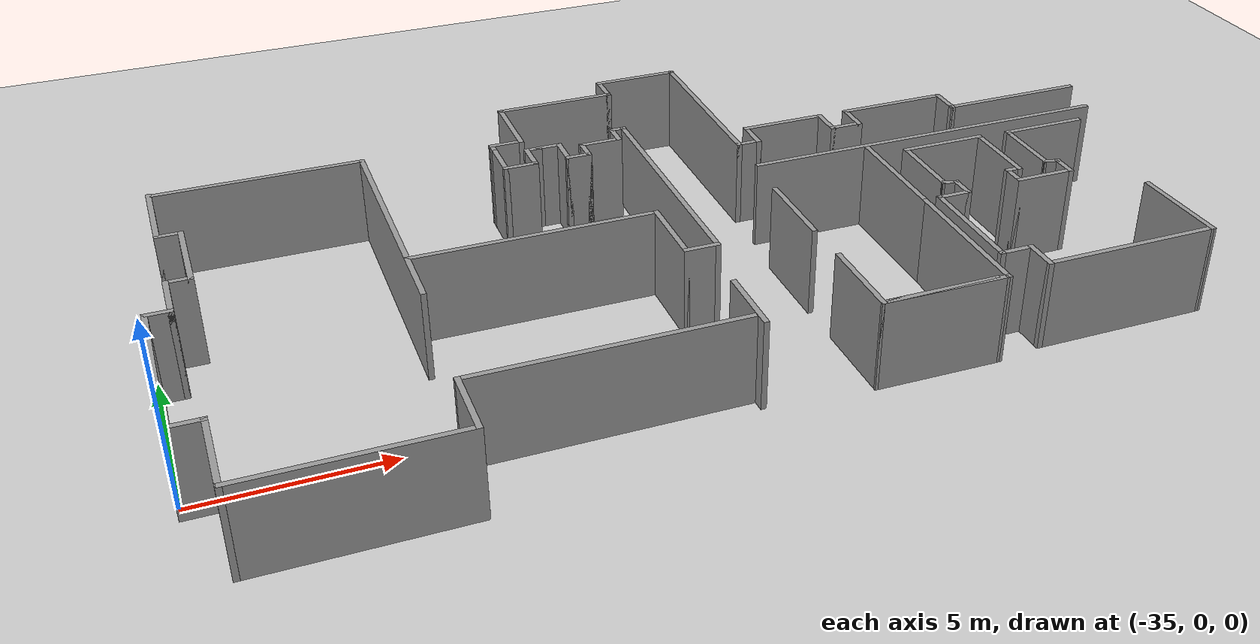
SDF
<sdf version="1.7">
 <world name="default">
  <model name="ground_plane">
   <static>1</static>
   <link name="link">
    <collision name="collision">
     <geometry><plane><normal>0 0 1</normal><size>100 100</size></plane></geometry>
     <surface><friction><ode><mu>100</mu><mu2>50</mu2></ode></friction></surface>
    </collision>
    <visual name="visual">
     <geometry><plane><normal>0 0 1</normal><size>100 100</size></plane></geometry>
     <material>
      <script><uri>file://media/materials/scripts/gazebo.material</uri><name>Gazebo/Grey</name></script>
     </material>
    </visual>
    <velocity_decay><linear>0</linear><angular>0</angular></velocity_decay>
   </link>
  </model>
  <model name="HandMade">
   <pose>-0.902363 5.97176 0 0 -0 0</pose>
   <link name="Wall_10">
    <collision name="Wall_10_Collision">
     <geometry><box><size>7.5 0.15 2.5</size></box></geometry>
     <pose>0 0 1.25 0 -0 0</pose>
    </collision>
    <visual name="Wall_10_Visual">
     <pose>0 0 1.25 0 -0 0</pose>
     <geometry><box><size>7.5 0.15 2.5</size></box></geometry>
     <material>
      <script><uri>file://media/materials/scripts/gazebo.material</uri><name>Gazebo/Grey</name></script>
      <ambient>1 1 1 1</ambient>
     </material>
     <meta><layer>0</layer></meta>
    </visual>
    <pose>-27.7593 0.603409 0 0 -0 -1.5708</pose>
   </link>
   <link name="Wall_12">
    <collision name="Wall_12_Collision">
     <geometry><box><size>6.75 0.15 2.5</size></box></geometry>
     <pose>0 0 1.25 0 -0 0</pose>
    </collision>
    <visual name="Wall_12_Visual">
     <pose>0 0 1.25 0 -0 0</pose>
     <geometry><box><size>6.75 0.15 2.5</size></box></geometry>
     <material>
      <script><uri>file://media/materials/scripts/gazebo.material</uri><name>Gazebo/Grey</name></script>
      <ambient>1 1 1 1</ambient>
     </material>
     <meta><layer>0</layer></meta>
    </visual>
    <pose>-24.4493 -1.37659 0 0 -0 0</pose>
   </link>
   <link name="Wall_13">
    <collision name="Wall_13_Collision">
     <geometry><box><size>2.25 0.15 2.5</size></box></geometry>
     <pose>0 0 1.25 0 -0 0</pose>
    </collision>
    <visual name="Wall_13_Visual">
     <pose>0 0 1.25 0 -0 0</pose>
     <geometry><box><size>2.25 0.15 2.5</size></box></geometry>
     <material>
      <script><uri>file://media/materials/scripts/gazebo.material</uri><name>Gazebo/Grey</name></script>
      <ambient>1 1 1 1</ambient>
     </material>
     <meta><layer>0</layer></meta>
    </visual>
    <pose>-21.1493 -2.42659 0 0 -0 -1.5708</pose>
   </link>
   <link name="Wall_14">
    <collision name="Wall_14_Collision">
     <geometry><box><size>1 0.15 2.5</size></box></geometry>
     <pose>0 0 1.25 0 -0 0</pose>
    </collision>
    <visual name="Wall_14_Visual">
     <pose>0 0 1.25 0 -0 0</pose>
     <geometry><box><size>1 0.15 2.5</size></box></geometry>
     <material>
      <script><uri>file://media/materials/scripts/gazebo.material</uri><name>Gazebo/Grey</name></script>
      <ambient>1 1 1 1</ambient>
     </material>
     <meta><layer>0</layer></meta>
    </visual>
    <pose>-20.7243 -3.47659 0 0 -0 0</pose>
   </link>
   <link name="Wall_15">
    <collision name="Wall_15_Collision">
     <geometry><box><size>7.25 0.15 2.5</size></box></geometry>
     <pose>0 0 1.25 0 -0 0</pose>
    </collision>
    <visual name="Wall_15_Visual">
     <pose>0 0 1.25 0 -0 0</pose>
     <geometry><box><size>7.25 0.15 2.5</size></box></geometry>
     <material>
      <script><uri>file://media/materials/scripts/gazebo.material</uri><name>Gazebo/Grey</name></script>
      <ambient>1 1 1 1</ambient>
     </material>
     <meta><layer>0</layer></meta>
    </visual>
    <pose>-20.2993 0.073409 0 0 -0 1.5708</pose>
   </link>
   <link name="Wall_18">
    <collision name="Wall_18_Collision">
     <geometry><box><size>0.5 0.15 2.5</size></box></geometry>
     <pose>0 0 1.25 0 -0 0</pose>
    </collision>
    <visual name="Wall_18_Visual">
     <pose>0 0 1.25 0 -0 0</pose>
     <geometry><box><size>0.5 0.15 2.5</size></box></geometry>
     <material>
      <script><uri>file://media/materials/scripts/gazebo.material</uri><name>Gazebo/Grey</name></script>
      <ambient>1 1 1 1</ambient>
     </material>
     <meta><layer>0</layer></meta>
    </visual>
    <pose>-20.4743 3.62341 0 0 -0 3.14159</pose>
   </link>
   <link name="Wall_19">
    <collision name="Wall_19_Collision">
     <geometry><box><size>0.75 0.15 2.5</size></box></geometry>
     <pose>0 0 1.25 0 -0 0</pose>
    </collision>
    <visual name="Wall_19_Visual">
     <pose>0 0 1.25 0 -0 0</pose>
     <geometry><box><size>0.75 0.15 2.5</size></box></geometry>
     <material>
      <script><uri>file://media/materials/scripts/gazebo.material</uri><name>Gazebo/Grey</name></script>
      <ambient>1 1 1 1</ambient>
     </material>
     <meta><layer>0</layer></meta>
    </visual>
    <pose>-20.6493 3.32341 0 0 -0 -1.5708</pose>
   </link>
   <link name="Wall_20">
    <collision name="Wall_20_Collision">
     <geometry><box><size>1.25 0.15 2.5</size></box></geometry>
     <pose>0 0 1.25 0 -0 0</pose>
    </collision>
    <visual name="Wall_20_Visual">
     <pose>0 0 1.25 0 -0 0</pose>
     <geometry><box><size>1.25 0.15 2.5</size></box></geometry>
     <material>
      <script><uri>file://media/materials/scripts/gazebo.material</uri><name>Gazebo/Grey</name></script>
      <ambient>1 1 1 1</ambient>
     </material>
     <meta><layer>0</layer></meta>
    </visual>
    <pose>-21.1993 3.02341 0 0 -0 3.14159</pose>
   </link>
   <link name="Wall_21">
    <collision name="Wall_21_Collision">
     <geometry><box><size>0.75 0.15 2.5</size></box></geometry>
     <pose>0 0 1.25 0 -0 0</pose>
    </collision>
    <visual name="Wall_21_Visual">
     <pose>0 0 1.25 0 -0 0</pose>
     <geometry><box><size>0.75 0.15 2.5</size></box></geometry>
     <material>
      <script><uri>file://media/materials/scripts/gazebo.material</uri><name>Gazebo/Grey</name></script>
      <ambient>1 1 1 1</ambient>
     </material>
     <meta><layer>0</layer></meta>
    </visual>
    <pose>-21.7493 2.72341 0 0 -0 -1.5708</pose>
   </link>
   <link name="Wall_22">
    <collision name="Wall_22_Collision">
     <geometry><box><size>0.75 0.15 2.5</size></box></geometry>
     <pose>0 0 1.25 0 -0 0</pose>
    </collision>
    <visual name="Wall_22_Visual">
     <pose>0 0 1.25 0 -0 0</pose>
     <geometry><box><size>0.75 0.15 2.5</size></box></geometry>
     <material>
      <script><uri>file://media/materials/scripts/gazebo.material</uri><name>Gazebo/Grey</name></script>
      <ambient>1 1 1 1</ambient>
     </material>
     <meta><layer>0</layer></meta>
    </visual>
    <pose>-22.0493 2.42341 0 0 -0 3.14159</pose>
   </link>
   <link name="Wall_23">
    <collision name="Wall_23_Collision">
     <geometry><box><size>1 0.15 2.5</size></box></geometry>
     <pose>0 0 1.25 0 -0 0</pose>
    </collision>
    <visual name="Wall_23_Visual">
     <pose>0 0 1.25 0 -0 0</pose>
     <geometry><box><size>1 0.15 2.5</size></box></geometry>
     <material>
      <script><uri>file://media/materials/scripts/gazebo.material</uri><name>Gazebo/Grey</name></script>
      <ambient>1 1 1 1</ambient>
     </material>
     <meta><layer>0</layer></meta>
    </visual>
    <pose>-22.3493 2.84841 0 0 -0 1.5708</pose>
   </link>
   <link name="Wall_24">
    <collision name="Wall_24_Collision">
     <geometry><box><size>0.75 0.15 2.5</size></box></geometry>
     <pose>0 0 1.25 0 -0 0</pose>
    </collision>
    <visual name="Wall_24_Visual">
     <pose>0 0 1.25 0 -0 0</pose>
     <geometry><box><size>0.75 0.15 2.5</size></box></geometry>
     <material>
      <script><uri>file://media/materials/scripts/gazebo.material</uri><name>Gazebo/Grey</name></script>
      <ambient>1 1 1 1</ambient>
     </material>
     <meta><layer>0</layer></meta>
    </visual>
    <pose>-22.6493 3.27341 0 0 -0 3.14159</pose>
   </link>
   <link name="Wall_25">
    <collision name="Wall_25_Collision">
     <geometry><box><size>0.5 0.15 2.5</size></box></geometry>
     <pose>0 0 1.25 0 -0 0</pose>
    </collision>
    <visual name="Wall_25_Visual">
     <pose>0 0 1.25 0 -0 0</pose>
     <geometry><box><size>0.5 0.15 2.5</size></box></geometry>
     <material>
      <script><uri>file://media/materials/scripts/gazebo.material</uri><name>Gazebo/Grey</name></script>
      <ambient>1 1 1 1</ambient>
     </material>
     <meta><layer>0</layer></meta>
    </visual>
    <pose>-23.1243 3.27341 0 0 -0 3.14159</pose>
   </link>
   <link name="Wall_258">
    <collision name="Wall_258_Collision">
     <geometry><box><size>2.76827 0.15 2.5</size></box></geometry>
     <pose>0 0 1.25 0 -0 0</pose>
    </collision>
    <visual name="Wall_258_Visual">
     <pose>0 0 1.25 0 -0 0</pose>
     <geometry><box><size>2.76827 0.15 2.5</size></box></geometry>
     <material>
      <script><uri>file://media/materials/scripts/gazebo.material</uri><name>Gazebo/Grey</name></script>
      <ambient>1 1 1 1</ambient>
     </material>
     <meta><layer>0</layer></meta>
    </visual>
    <pose>-8.15578 -5.96974 0 0 -0 -1.54963</pose>
   </link>
   <link name="Wall_259">
    <collision name="Wall_259_Collision">
     <geometry><box><size>5 0.15 2.5</size></box></geometry>
     <pose>0 0 1.25 0 -0 0</pose>
    </collision>
    <visual name="Wall_259_Visual">
     <pose>0 0 1.25 0 -0 0</pose>
     <geometry><box><size>5 0.15 2.5</size></box></geometry>
     <material>
      <script><uri>file://media/materials/scripts/gazebo.material</uri><name>Gazebo/Grey</name></script>
      <ambient>1 1 1 1</ambient>
     </material>
     <meta><layer>0</layer></meta>
    </visual>
    <pose>-10.5531 -7.27858 0 0 -0 3.14159</pose>
   </link>
   <link name="Wall_26">
    <collision name="Wall_26_Collision">
     <geometry><box><size>1 0.15 2.5</size></box></geometry>
     <pose>0 0 1.25 0 -0 0</pose>
    </collision>
    <visual name="Wall_26_Visual">
     <pose>0 0 1.25 0 -0 0</pose>
     <geometry><box><size>1 0.15 2.5</size></box></geometry>
     <material>
      <script><uri>file://media/materials/scripts/gazebo.material</uri><name>Gazebo/Grey</name></script>
      <ambient>1 1 1 1</ambient>
     </material>
     <meta><layer>0</layer></meta>
    </visual>
    <pose>-23.2993 2.84841 0 0 -0 -1.5708</pose>
   </link>
   <link name="Wall_262">
    <collision name="Wall_262_Collision">
     <geometry><box><size>1 0.15 2.5</size></box></geometry>
     <pose>0 0 1.25 0 -0 0</pose>
    </collision>
    <visual name="Wall_262_Visual">
     <pose>0 0 1.25 0 -0 0</pose>
     <geometry><box><size>1 0.15 2.5</size></box></geometry>
     <material>
      <script><uri>file://media/materials/scripts/gazebo.material</uri><name>Gazebo/Grey</name></script>
      <ambient>1 1 1 1</ambient>
     </material>
     <meta><layer>0</layer></meta>
    </visual>
    <pose>-12.9781 -6.85358 0 0 -0 1.5708</pose>
   </link>
   <link name="Wall_263">
    <collision name="Wall_263_Collision">
     <geometry><box><size>1 0.15 2.5</size></box></geometry>
     <pose>0 0 1.25 0 -0 0</pose>
    </collision>
    <visual name="Wall_263_Visual">
     <pose>0 0 1.25 0 -0 0</pose>
     <geometry><box><size>1 0.15 2.5</size></box></geometry>
     <material>
      <script><uri>file://media/materials/scripts/gazebo.material</uri><name>Gazebo/Grey</name></script>
      <ambient>1 1 1 1</ambient>
     </material>
     <meta><layer>0</layer></meta>
    </visual>
    <pose>-13.4031 -6.42858 0 0 -0 3.14159</pose>
   </link>
   <link name="Wall_264">
    <collision name="Wall_264_Collision">
     <geometry><box><size>3.25 0.15 2.5</size></box></geometry>
     <pose>0 0 1.25 0 -0 0</pose>
    </collision>
    <visual name="Wall_264_Visual">
     <pose>0 0 1.25 0 -0 0</pose>
     <geometry><box><size>3.25 0.15 2.5</size></box></geometry>
     <material>
      <script><uri>file://media/materials/scripts/gazebo.material</uri><name>Gazebo/Grey</name></script>
      <ambient>1 1 1 1</ambient>
     </material>
     <meta><layer>0</layer></meta>
    </visual>
    <pose>-13.8281 -4.87858 0 0 -0 1.5708</pose>
   </link>
   <link name="Wall_265">
    <collision name="Wall_265_Collision">
     <geometry><box><size>1 0.15 2.5</size></box></geometry>
     <pose>0 0 1.25 0 -0 0</pose>
    </collision>
    <visual name="Wall_265_Visual">
     <pose>0 0 1.25 0 -0 0</pose>
     <geometry><box><size>1 0.15 2.5</size></box></geometry>
     <material>
      <script><uri>file://media/materials/scripts/gazebo.material</uri><name>Gazebo/Grey</name></script>
      <ambient>1 1 1 1</ambient>
     </material>
     <meta><layer>0</layer></meta>
    </visual>
    <pose>-13.4031 -3.32858 0 0 -0 0</pose>
   </link>
   <link name="Wall_266">
    <collision name="Wall_266_Collision">
     <geometry><box><size>0.75 0.15 2.5</size></box></geometry>
     <pose>0 0 1.25 0 -0 0</pose>
    </collision>
    <visual name="Wall_266_Visual">
     <pose>0 0 1.25 0 -0 0</pose>
     <geometry><box><size>0.75 0.15 2.5</size></box></geometry>
     <material>
      <script><uri>file://media/materials/scripts/gazebo.material</uri><name>Gazebo/Grey</name></script>
      <ambient>1 1 1 1</ambient>
     </material>
     <meta><layer>0</layer></meta>
    </visual>
    <pose>-12.9781 -3.02858 0 0 -0 1.5708</pose>
   </link>
   <link name="Wall_267">
    <collision name="Wall_267_Collision">
     <geometry><box><size>0.5 0.15 2.5</size></box></geometry>
     <pose>0 0 1.25 0 -0 0</pose>
    </collision>
    <visual name="Wall_267_Visual">
     <pose>0 0 1.25 0 -0 0</pose>
     <geometry><box><size>0.5 0.15 2.5</size></box></geometry>
     <material>
      <script><uri>file://media/materials/scripts/gazebo.material</uri><name>Gazebo/Grey</name></script>
      <ambient>1 1 1 1</ambient>
     </material>
     <meta><layer>0</layer></meta>
    </visual>
    <pose>-13.1471 -2.68328 0 0 -0 2.87979</pose>
   </link>
   <link name="Wall_268">
    <collision name="Wall_268_Collision">
     <geometry><box><size>2.25 0.15 2.5</size></box></geometry>
     <pose>0 0 1.25 0 -0 0</pose>
    </collision>
    <visual name="Wall_268_Visual">
     <pose>0 0 1.25 0 -0 0</pose>
     <geometry><box><size>2.25 0.15 2.5</size></box></geometry>
     <material>
      <script><uri>file://media/materials/scripts/gazebo.material</uri><name>Gazebo/Grey</name></script>
      <ambient>1 1 1 1</ambient>
     </material>
     <meta><layer>0</layer></meta>
    </visual>
    <pose>-13.3161 -1.58799 0 0 -0 1.5708</pose>
   </link>
   <link name="Wall_269">
    <collision name="Wall_269_Collision">
     <geometry><box><size>2.5 0.15 2.5</size></box></geometry>
     <pose>0 0 1.25 0 -0 0</pose>
    </collision>
    <visual name="Wall_269_Visual">
     <pose>0 0 1.25 0 -0 0</pose>
     <geometry><box><size>2.5 0.15 2.5</size></box></geometry>
     <material>
      <script><uri>file://media/materials/scripts/gazebo.material</uri><name>Gazebo/Grey</name></script>
      <ambient>1 1 1 1</ambient>
     </material>
     <meta><layer>0</layer></meta>
    </visual>
    <pose>-12.1411 -0.537989 0 0 -0 0</pose>
   </link>
   <link name="Wall_27">
    <collision name="Wall_27_Collision">
     <geometry><box><size>1 0.15 2.5</size></box></geometry>
     <pose>0 0 1.25 0 -0 0</pose>
    </collision>
    <visual name="Wall_27_Visual">
     <pose>0 0 1.25 0 -0 0</pose>
     <geometry><box><size>1 0.15 2.5</size></box></geometry>
     <material>
      <script><uri>file://media/materials/scripts/gazebo.material</uri><name>Gazebo/Grey</name></script>
      <ambient>1 1 1 1</ambient>
     </material>
     <meta><layer>0</layer></meta>
    </visual>
    <pose>-23.7243 2.42341 0 0 -0 3.14159</pose>
   </link>
   <link name="Wall_270">
    <collision name="Wall_270_Collision">
     <geometry><box><size>2.25 0.15 2.5</size></box></geometry>
     <pose>0 0 1.25 0 -0 0</pose>
    </collision>
    <visual name="Wall_270_Visual">
     <pose>0 0 1.25 0 -0 0</pose>
     <geometry><box><size>2.25 0.15 2.5</size></box></geometry>
     <material>
      <script><uri>file://media/materials/scripts/gazebo.material</uri><name>Gazebo/Grey</name></script>
      <ambient>1 1 1 1</ambient>
     </material>
     <meta><layer>0</layer></meta>
    </visual>
    <pose>-10.9661 -1.58799 0 0 -0 -1.5708</pose>
   </link>
   <link name="Wall_271">
    <collision name="Wall_271_Collision">
     <geometry><box><size>0.5 0.15 2.5</size></box></geometry>
     <pose>0 0 1.25 0 -0 0</pose>
    </collision>
    <visual name="Wall_271_Visual">
     <pose>0 0 1.25 0 -0 0</pose>
     <geometry><box><size>0.5 0.15 2.5</size></box></geometry>
     <material>
      <script><uri>file://media/materials/scripts/gazebo.material</uri><name>Gazebo/Grey</name></script>
      <ambient>1 1 1 1</ambient>
     </material>
     <meta><layer>0</layer></meta>
    </visual>
    <pose>-11.1411 -2.63799 0 0 -0 3.14159</pose>
   </link>
   <link name="Wall_272">
    <collision name="Wall_272_Collision">
     <geometry><box><size>0.75 0.15 2.5</size></box></geometry>
     <pose>0 0 1.25 0 -0 0</pose>
    </collision>
    <visual name="Wall_272_Visual">
     <pose>0 0 1.25 0 -0 0</pose>
     <geometry><box><size>0.75 0.15 2.5</size></box></geometry>
     <material>
      <script><uri>file://media/materials/scripts/gazebo.material</uri><name>Gazebo/Grey</name></script>
      <ambient>1 1 1 1</ambient>
     </material>
     <meta><layer>0</layer></meta>
    </visual>
    <pose>-11.3161 -2.93799 0 0 -0 -1.5708</pose>
   </link>
   <link name="Wall_273">
    <collision name="Wall_273_Collision">
     <geometry><box><size>1.75 0.15 2.5</size></box></geometry>
     <pose>0 0 1.25 0 -0 0</pose>
    </collision>
    <visual name="Wall_273_Visual">
     <pose>0 0 1.25 0 -0 0</pose>
     <geometry><box><size>1.75 0.15 2.5</size></box></geometry>
     <material>
      <script><uri>file://media/materials/scripts/gazebo.material</uri><name>Gazebo/Grey</name></script>
      <ambient>1 1 1 1</ambient>
     </material>
     <meta><layer>0</layer></meta>
    </visual>
    <pose>-10.5161 -3.23799 0 0 -0 0</pose>
   </link>
   <link name="Wall_274">
    <collision name="Wall_274_Collision">
     <geometry><box><size>0.75 0.15 2.5</size></box></geometry>
     <pose>0 0 1.25 0 -0 0</pose>
    </collision>
    <visual name="Wall_274_Visual">
     <pose>0 0 1.25 0 -0 0</pose>
     <geometry><box><size>0.75 0.15 2.5</size></box></geometry>
     <material>
      <script><uri>file://media/materials/scripts/gazebo.material</uri><name>Gazebo/Grey</name></script>
      <ambient>1 1 1 1</ambient>
     </material>
     <meta><layer>0</layer></meta>
    </visual>
    <pose>-9.71615 -2.93799 0 0 -0 1.5708</pose>
   </link>
   <link name="Wall_275">
    <collision name="Wall_275_Collision">
     <geometry><box><size>0.5 0.15 2.5</size></box></geometry>
     <pose>0 0 1.25 0 -0 0</pose>
    </collision>
    <visual name="Wall_275_Visual">
     <pose>0 0 1.25 0 -0 0</pose>
     <geometry><box><size>0.5 0.15 2.5</size></box></geometry>
     <material>
      <script><uri>file://media/materials/scripts/gazebo.material</uri><name>Gazebo/Grey</name></script>
      <ambient>1 1 1 1</ambient>
     </material>
     <meta><layer>0</layer></meta>
    </visual>
    <pose>-9.88518 -2.5927 0 0 -0 2.87979</pose>
   </link>
   <link name="Wall_276">
    <collision name="Wall_276_Collision">
     <geometry><box><size>2 0.15 2.5</size></box></geometry>
     <pose>0 0 1.25 0 -0 0</pose>
    </collision>
    <visual name="Wall_276_Visual">
     <pose>0 0 1.25 0 -0 0</pose>
     <geometry><box><size>2 0.15 2.5</size></box></geometry>
     <material>
      <script><uri>file://media/materials/scripts/gazebo.material</uri><name>Gazebo/Grey</name></script>
      <ambient>1 1 1 1</ambient>
     </material>
     <meta><layer>0</layer></meta>
    </visual>
    <pose>-10.0542 -1.6224 0 0 -0 1.5708</pose>
   </link>
   <link name="Wall_277">
    <collision name="Wall_277_Collision">
     <geometry><box><size>0.25 0.15 2.5</size></box></geometry>
     <pose>0 0 1.25 0 -0 0</pose>
    </collision>
    <visual name="Wall_277_Visual">
     <pose>0 0 1.25 0 -0 0</pose>
     <geometry><box><size>0.25 0.15 2.5</size></box></geometry>
     <material>
      <script><uri>file://media/materials/scripts/gazebo.material</uri><name>Gazebo/Grey</name></script>
      <ambient>1 1 1 1</ambient>
     </material>
     <meta><layer>0</layer></meta>
    </visual>
    <pose>-10.0542 -0.647403 0 0 -0 1.5708</pose>
   </link>
   <link name="Wall_278">
    <collision name="Wall_278_Collision">
     <geometry><box><size>2.5 0.15 2.5</size></box></geometry>
     <pose>0 0 1.25 0 -0 0</pose>
    </collision>
    <visual name="Wall_278_Visual">
     <pose>0 0 1.25 0 -0 0</pose>
     <geometry><box><size>2.5 0.15 2.5</size></box></geometry>
     <material>
      <script><uri>file://media/materials/scripts/gazebo.material</uri><name>Gazebo/Grey</name></script>
      <ambient>1 1 1 1</ambient>
     </material>
     <meta><layer>0</layer></meta>
    </visual>
    <pose>-8.87922 -0.597403 0 0 -0 0</pose>
   </link>
   <link name="Wall_28">
    <collision name="Wall_28_Collision">
     <geometry><box><size>1.25 0.15 2.5</size></box></geometry>
     <pose>0 0 1.25 0 -0 0</pose>
    </collision>
    <visual name="Wall_28_Visual">
     <pose>0 0 1.25 0 -0 0</pose>
     <geometry><box><size>1.25 0.15 2.5</size></box></geometry>
     <material>
      <script><uri>file://media/materials/scripts/gazebo.material</uri><name>Gazebo/Grey</name></script>
      <ambient>1 1 1 1</ambient>
     </material>
     <meta><layer>0</layer></meta>
    </visual>
    <pose>-24.1493 2.97341 0 0 -0 1.5708</pose>
   </link>
   <link name="Wall_285">
    <collision name="Wall_285_Collision">
     <geometry><box><size>10.75 0.15 2.5</size></box></geometry>
     <pose>0 0 1.25 0 -0 0</pose>
    </collision>
    <visual name="Wall_285_Visual">
     <pose>0 0 1.25 0 -0 0</pose>
     <geometry><box><size>10.75 0.15 2.5</size></box></geometry>
     <material>
      <script><uri>file://media/materials/scripts/gazebo.material</uri><name>Gazebo/Grey</name></script>
      <ambient>1 1 1 1</ambient>
     </material>
     <meta><layer>0</layer></meta>
    </visual>
    <pose>-12.2731 0.10355 0 0 -0 0</pose>
   </link>
   <link name="Wall_288">
    <collision name="Wall_288_Collision">
     <geometry><box><size>2.5 0.15 2.5</size></box></geometry>
     <pose>0 0 1.25 0 -0 0</pose>
    </collision>
    <visual name="Wall_288_Visual">
     <pose>0 0 1.25 0 -0 0</pose>
     <geometry><box><size>2.5 0.15 2.5</size></box></geometry>
     <material>
      <script><uri>file://media/materials/scripts/gazebo.material</uri><name>Gazebo/Grey</name></script>
      <ambient>1 1 1 1</ambient>
     </material>
     <meta><layer>0</layer></meta>
    </visual>
    <pose>-17.7166 -2.51486 0 0 -0 1.5708</pose>
   </link>
   <link name="Wall_29">
    <collision name="Wall_29_Collision">
     <geometry><box><size>0.5 0.15 2.5</size></box></geometry>
     <pose>0 0 1.25 0 -0 0</pose>
    </collision>
    <visual name="Wall_29_Visual">
     <pose>0 0 1.25 0 -0 0</pose>
     <geometry><box><size>0.5 0.15 2.5</size></box></geometry>
     <material>
      <script><uri>file://media/materials/scripts/gazebo.material</uri><name>Gazebo/Grey</name></script>
      <ambient>1 1 1 1</ambient>
     </material>
     <meta><layer>0</layer></meta>
    </visual>
    <pose>-24.1493 3.69841 0 0 -0 1.5708</pose>
   </link>
   <link name="Wall_290">
    <collision name="Wall_290_Collision">
     <geometry><box><size>2.5 0.15 2.5</size></box></geometry>
     <pose>0 0 1.25 0 -0 0</pose>
    </collision>
    <visual name="Wall_290_Visual">
     <pose>0 0 1.25 0 -0 0</pose>
     <geometry><box><size>2.5 0.15 2.5</size></box></geometry>
     <material>
      <script><uri>file://media/materials/scripts/gazebo.material</uri><name>Gazebo/Grey</name></script>
      <ambient>1 1 1 1</ambient>
     </material>
     <meta><layer>0</layer></meta>
    </visual>
    <pose>-17.6756 -6.24263 0 0 -0 -1.5708</pose>
   </link>
   <link name="Wall_291">
    <collision name="Wall_291_Collision">
     <geometry><box><size>3.25 0.15 2.5</size></box></geometry>
     <pose>0 0 1.25 0 -0 0</pose>
    </collision>
    <visual name="Wall_291_Visual">
     <pose>0 0 1.25 0 -0 0</pose>
     <geometry><box><size>3.25 0.15 2.5</size></box></geometry>
     <material>
      <script><uri>file://media/materials/scripts/gazebo.material</uri><name>Gazebo/Grey</name></script>
      <ambient>1 1 1 1</ambient>
     </material>
     <meta><layer>0</layer></meta>
    </visual>
    <pose>-16.1256 -7.41763 0 0 -0 0</pose>
   </link>
   <link name="Wall_293">
    <collision name="Wall_293_Collision">
     <geometry><box><size>3.5 0.15 2.5</size></box></geometry>
     <pose>0 0 1.25 0 -0 0</pose>
    </collision>
    <visual name="Wall_293_Visual">
     <pose>0 0 1.25 0 -0 0</pose>
     <geometry><box><size>3.5 0.15 2.5</size></box></geometry>
     <material>
      <script><uri>file://media/materials/scripts/gazebo.material</uri><name>Gazebo/Grey</name></script>
      <ambient>1 1 1 1</ambient>
     </material>
     <meta><layer>0</layer></meta>
    </visual>
    <pose>-14.2718 -1.67397 0 0 -0 -1.5708</pose>
   </link>
   <link name="Wall_295">
    <collision name="Wall_295_Collision">
     <geometry><box><size>4.25 0.15 2.5</size></box></geometry>
     <pose>0 0 1.25 0 -0 0</pose>
    </collision>
    <visual name="Wall_295_Visual">
     <pose>0 0 1.25 0 -0 0</pose>
     <geometry><box><size>4.25 0.15 2.5</size></box></geometry>
     <material>
      <script><uri>file://media/materials/scripts/gazebo.material</uri><name>Gazebo/Grey</name></script>
      <ambient>1 1 1 1</ambient>
     </material>
     <meta><layer>0</layer></meta>
    </visual>
    <pose>-14.2718 -5.39898 0 0 -0 -1.5708</pose>
   </link>
   <link name="Wall_296">
    <collision name="Wall_296_Collision">
     <geometry><box><size>3.55396 0.15 2.5</size></box></geometry>
     <pose>0 0 1.25 0 -0 0</pose>
    </collision>
    <visual name="Wall_296_Visual">
     <pose>0 0 1.25 0 -0 0</pose>
     <geometry><box><size>3.55396 0.15 2.5</size></box></geometry>
     <material>
      <script><uri>file://media/materials/scripts/gazebo.material</uri><name>Gazebo/Grey</name></script>
      <ambient>1 1 1 1</ambient>
     </material>
     <meta><layer>0</layer></meta>
    </visual>
    <pose>-15.9737 -7.4333 0 0 -0 3.13238</pose>
   </link>
   <link name="Wall_298">
    <collision name="Wall_298_Collision">
     <geometry><box><size>2 0.15 2.5</size></box></geometry>
     <pose>0 0 1.25 0 -0 0</pose>
    </collision>
    <visual name="Wall_298_Visual">
     <pose>0 0 1.25 0 -0 0</pose>
     <geometry><box><size>2 0.15 2.5</size></box></geometry>
     <material>
      <script><uri>file://media/materials/scripts/gazebo.material</uri><name>Gazebo/Grey</name></script>
      <ambient>1 1 1 1</ambient>
     </material>
     <meta><layer>0</layer></meta>
    </visual>
    <pose>-20.6078 -6.20968 0 0 -0 1.5708</pose>
   </link>
   <link name="Wall_30">
    <collision name="Wall_30_Collision">
     <geometry><box><size>1 0.15 2.5</size></box></geometry>
     <pose>0 0 1.25 0 -0 0</pose>
    </collision>
    <visual name="Wall_30_Visual">
     <pose>0 0 1.25 0 -0 0</pose>
     <geometry><box><size>1 0.15 2.5</size></box></geometry>
     <material>
      <script><uri>file://media/materials/scripts/gazebo.material</uri><name>Gazebo/Grey</name></script>
      <ambient>1 1 1 1</ambient>
     </material>
     <meta><layer>0</layer></meta>
    </visual>
    <pose>-23.7243 3.87341 0 0 -0 0</pose>
   </link>
   <link name="Wall_300">
    <collision name="Wall_300_Collision">
     <geometry><box><size>7.25 0.15 2.5</size></box></geometry>
     <pose>0 0 1.25 0 -0 0</pose>
    </collision>
    <visual name="Wall_300_Visual">
     <pose>0 0 1.25 0 -0 0</pose>
     <geometry><box><size>7.25 0.15 2.5</size></box></geometry>
     <material>
      <script><uri>file://media/materials/scripts/gazebo.material</uri><name>Gazebo/Grey</name></script>
      <ambient>1 1 1 1</ambient>
     </material>
     <meta><layer>0</layer></meta>
    </visual>
    <pose>-24.3165 -6.82711 0 0 -0 0</pose>
   </link>
   <link name="Wall_303">
    <collision name="Wall_303_Collision">
     <geometry><box><size>2 0.15 2.5</size></box></geometry>
     <pose>0 0 1.25 0 -0 0</pose>
    </collision>
    <visual name="Wall_303_Visual">
     <pose>0 0 1.25 0 -0 0</pose>
     <geometry><box><size>2 0.15 2.5</size></box></geometry>
     <material>
      <script><uri>file://media/materials/scripts/gazebo.material</uri><name>Gazebo/Grey</name></script>
      <ambient>1 1 1 1</ambient>
     </material>
     <meta><layer>0</layer></meta>
    </visual>
    <pose>-27.8665 -7.75211 0 0 -0 -1.5708</pose>
   </link>
   <link name="Wall_304">
    <collision name="Wall_304_Collision">
     <geometry><box><size>5.5 0.15 2.5</size></box></geometry>
     <pose>0 0 1.25 0 -0 0</pose>
    </collision>
    <visual name="Wall_304_Visual">
     <pose>0 0 1.25 0 -0 0</pose>
     <geometry><box><size>5.5 0.15 2.5</size></box></geometry>
     <material>
      <script><uri>file://media/materials/scripts/gazebo.material</uri><name>Gazebo/Grey</name></script>
      <ambient>1 1 1 1</ambient>
     </material>
     <meta><layer>0</layer></meta>
    </visual>
    <pose>-30.5415 -8.67711 0 0 -0 3.14159</pose>
   </link>
   <link name="Wall_305">
    <collision name="Wall_305_Collision">
     <geometry><box><size>2.5 0.15 2.5</size></box></geometry>
     <pose>0 0 1.25 0 -0 0</pose>
    </collision>
    <visual name="Wall_305_Visual">
     <pose>0 0 1.25 0 -0 0</pose>
     <geometry><box><size>2.5 0.15 2.5</size></box></geometry>
     <material>
      <script><uri>file://media/materials/scripts/gazebo.material</uri><name>Gazebo/Grey</name></script>
      <ambient>1 1 1 1</ambient>
     </material>
     <meta><layer>0</layer></meta>
    </visual>
    <pose>-33.2165 -7.50211 0 0 -0 1.5708</pose>
   </link>
   <link name="Wall_306">
    <collision name="Wall_306_Collision">
     <geometry><box><size>1 0.15 2.5</size></box></geometry>
     <pose>0 0 1.25 0 -0 0</pose>
    </collision>
    <visual name="Wall_306_Visual">
     <pose>0 0 1.25 0 -0 0</pose>
     <geometry><box><size>1 0.15 2.5</size></box></geometry>
     <material>
      <script><uri>file://media/materials/scripts/gazebo.material</uri><name>Gazebo/Grey</name></script>
      <ambient>1 1 1 1</ambient>
     </material>
     <meta><layer>0</layer></meta>
    </visual>
    <pose>-33.6415 -6.32711 0 0 -0 3.14159</pose>
   </link>
   <link name="Wall_307">
    <collision name="Wall_307_Collision">
     <geometry><box><size>4.75 0.15 2.5</size></box></geometry>
     <pose>0 0 1.25 0 -0 0</pose>
    </collision>
    <visual name="Wall_307_Visual">
     <pose>0 0 1.25 0 -0 0</pose>
     <geometry><box><size>4.75 0.15 2.5</size></box></geometry>
     <material>
      <script><uri>file://media/materials/scripts/gazebo.material</uri><name>Gazebo/Grey</name></script>
      <ambient>1 1 1 1</ambient>
     </material>
     <meta><layer>0</layer></meta>
    </visual>
    <pose>-34.0665 -4.02711 0 0 -0 1.5708</pose>
   </link>
   <link name="Wall_308">
    <collision name="Wall_308_Collision">
     <geometry><box><size>0.75 0.15 2.5</size></box></geometry>
     <pose>0 0 1.25 0 -0 0</pose>
    </collision>
    <visual name="Wall_308_Visual">
     <pose>0 0 1.25 0 -0 0</pose>
     <geometry><box><size>0.75 0.15 2.5</size></box></geometry>
     <material>
      <script><uri>file://media/materials/scripts/gazebo.material</uri><name>Gazebo/Grey</name></script>
      <ambient>1 1 1 1</ambient>
     </material>
     <meta><layer>0</layer></meta>
    </visual>
    <pose>-33.7665 -1.72711 0 0 -0 0</pose>
   </link>
   <link name="Wall_311">
    <collision name="Wall_311_Collision">
     <geometry><box><size>1.5 0.15 2.5</size></box></geometry>
     <pose>0 0 1.25 0 -0 0</pose>
    </collision>
    <visual name="Wall_311_Visual">
     <pose>0 0 1.25 0 -0 0</pose>
     <geometry><box><size>1.5 0.15 2.5</size></box></geometry>
     <material>
      <script><uri>file://media/materials/scripts/gazebo.material</uri><name>Gazebo/Grey</name></script>
      <ambient>1 1 1 1</ambient>
     </material>
     <meta><layer>0</layer></meta>
    </visual>
    <pose>-33.4665 -1.05211 0 0 -0 1.5708</pose>
   </link>
   <link name="Wall_312">
    <collision name="Wall_312_Collision">
     <geometry><box><size>0.75 0.15 2.5</size></box></geometry>
     <pose>0 0 1.25 0 -0 0</pose>
    </collision>
    <visual name="Wall_312_Visual">
     <pose>0 0 1.25 0 -0 0</pose>
     <geometry><box><size>0.75 0.15 2.5</size></box></geometry>
     <material>
      <script><uri>file://media/materials/scripts/gazebo.material</uri><name>Gazebo/Grey</name></script>
      <ambient>1 1 1 1</ambient>
     </material>
     <meta><layer>0</layer></meta>
    </visual>
    <pose>-33.1665 -0.377108 0 0 -0 0</pose>
   </link>
   <link name="Wall_313">
    <collision name="Wall_313_Collision">
     <geometry><box><size>2.5 0.15 2.5</size></box></geometry>
     <pose>0 0 1.25 0 -0 0</pose>
    </collision>
    <visual name="Wall_313_Visual">
     <pose>0 0 1.25 0 -0 0</pose>
     <geometry><box><size>2.5 0.15 2.5</size></box></geometry>
     <material>
      <script><uri>file://media/materials/scripts/gazebo.material</uri><name>Gazebo/Grey</name></script>
      <ambient>1 1 1 1</ambient>
     </material>
     <meta><layer>0</layer></meta>
    </visual>
    <pose>-32.8665 0.797892 0 0 -0 1.5708</pose>
   </link>
   <link name="Wall_314">
    <collision name="Wall_314_Collision">
     <geometry><box><size>0.75 0.15 2.5</size></box></geometry>
     <pose>0 0 1.25 0 -0 0</pose>
    </collision>
    <visual name="Wall_314_Visual">
     <pose>0 0 1.25 0 -0 0</pose>
     <geometry><box><size>0.75 0.15 2.5</size></box></geometry>
     <material>
      <script><uri>file://media/materials/scripts/gazebo.material</uri><name>Gazebo/Grey</name></script>
      <ambient>1 1 1 1</ambient>
     </material>
     <meta><layer>0</layer></meta>
    </visual>
    <pose>-33.1665 1.97289 0 0 -0 3.14159</pose>
   </link>
   <link name="Wall_315">
    <collision name="Wall_315_Collision">
     <geometry><box><size>2.5 0.15 2.5</size></box></geometry>
     <pose>0 0 1.25 0 -0 0</pose>
    </collision>
    <visual name="Wall_315_Visual">
     <pose>0 0 1.25 0 -0 0</pose>
     <geometry><box><size>2.5 0.15 2.5</size></box></geometry>
     <material>
      <script><uri>file://media/materials/scripts/gazebo.material</uri><name>Gazebo/Grey</name></script>
      <ambient>1 1 1 1</ambient>
     </material>
     <meta><layer>0</layer></meta>
    </visual>
    <pose>-33.4665 3.14789 0 0 -0 1.5708</pose>
   </link>
   <link name="Wall_32">
    <collision name="Wall_32_Collision">
     <geometry><box><size>2.25 0.15 2.5</size></box></geometry>
     <pose>0 0 1.25 0 -0 0</pose>
    </collision>
    <visual name="Wall_32_Visual">
     <pose>0 0 1.25 0 -0 0</pose>
     <geometry><box><size>2.25 0.15 2.5</size></box></geometry>
     <material>
      <script><uri>file://media/materials/scripts/gazebo.material</uri><name>Gazebo/Grey</name></script>
      <ambient>1 1 1 1</ambient>
     </material>
     <meta><layer>0</layer></meta>
    </visual>
    <pose>-23.2993 4.92341 0 0 -0 1.5708</pose>
   </link>
   <link name="Wall_33">
    <collision name="Wall_33_Collision">
     <geometry><box><size>3.5 0.15 2.5</size></box></geometry>
     <pose>0 0 1.25 0 -0 0</pose>
    </collision>
    <visual name="Wall_33_Visual">
     <pose>0 0 1.25 0 -0 0</pose>
     <geometry><box><size>3.5 0.15 2.5</size></box></geometry>
     <material>
      <script><uri>file://media/materials/scripts/gazebo.material</uri><name>Gazebo/Grey</name></script>
      <ambient>1 1 1 1</ambient>
     </material>
     <meta><layer>0</layer></meta>
    </visual>
    <pose>-21.6243 5.97341 0 0 -0 0</pose>
   </link>
   <link name="Wall_34">
    <collision name="Wall_34_Collision">
     <geometry><box><size>1 0.15 2.5</size></box></geometry>
     <pose>0 0 1.25 0 -0 0</pose>
    </collision>
    <visual name="Wall_34_Visual">
     <pose>0 0 1.25 0 -0 0</pose>
     <geometry><box><size>1 0.15 2.5</size></box></geometry>
     <material>
      <script><uri>file://media/materials/scripts/gazebo.material</uri><name>Gazebo/Grey</name></script>
      <ambient>1 1 1 1</ambient>
     </material>
     <meta><layer>0</layer></meta>
    </visual>
    <pose>-19.9493 6.39841 0 0 -0 1.5708</pose>
   </link>
   <link name="Wall_35">
    <collision name="Wall_35_Collision">
     <geometry><box><size>2.51262 0.15 2.5</size></box></geometry>
     <pose>0 0 1.25 0 -0 0</pose>
    </collision>
    <visual name="Wall_35_Visual">
     <pose>0 0 1.25 0 -0 0</pose>
     <geometry><box><size>2.51262 0.15 2.5</size></box></geometry>
     <material>
      <script><uri>file://media/materials/scripts/gazebo.material</uri><name>Gazebo/Grey</name></script>
      <ambient>1 1 1 1</ambient>
     </material>
     <meta><layer>0</layer></meta>
    </visual>
    <pose>-18.7679 6.82333 0 0 -0 -7e-05</pose>
   </link>
   <link name="Wall_58">
    <collision name="Wall_58_Collision">
     <geometry><box><size>5.5 0.15 2.5</size></box></geometry>
     <pose>0 0 1.25 0 -0 0</pose>
    </collision>
    <visual name="Wall_58_Visual">
     <pose>0 0 1.25 0 -0 0</pose>
     <geometry><box><size>5.5 0.15 2.5</size></box></geometry>
     <material>
      <script><uri>file://media/materials/scripts/gazebo.material</uri><name>Gazebo/Grey</name></script>
      <ambient>1 1 1 1</ambient>
     </material>
     <meta><layer>0</layer></meta>
    </visual>
    <pose>-17.5866 4.14824 0 0 -0 -1.5708</pose>
   </link>
   <link name="Wall_59">
    <collision name="Wall_59_Collision">
     <geometry><box><size>0.75 0.15 2.5</size></box></geometry>
     <pose>0 0 1.25 0 -0 0</pose>
    </collision>
    <visual name="Wall_59_Visual">
     <pose>0 0 1.25 0 -0 0</pose>
     <geometry><box><size>0.75 0.15 2.5</size></box></geometry>
     <material>
      <script><uri>file://media/materials/scripts/gazebo.material</uri><name>Gazebo/Grey</name></script>
      <ambient>1 1 1 1</ambient>
     </material>
     <meta><layer>0</layer></meta>
    </visual>
    <pose>-17.2866 1.47324 0 0 -0 0</pose>
   </link>
   <link name="Wall_60">
    <collision name="Wall_60_Collision">
     <geometry><box><size>1 0.15 2.5</size></box></geometry>
     <pose>0 0 1.25 0 -0 0</pose>
    </collision>
    <visual name="Wall_60_Visual">
     <pose>0 0 1.25 0 -0 0</pose>
     <geometry><box><size>1 0.15 2.5</size></box></geometry>
     <material>
      <script><uri>file://media/materials/scripts/gazebo.material</uri><name>Gazebo/Grey</name></script>
      <ambient>1 1 1 1</ambient>
     </material>
     <meta><layer>0</layer></meta>
    </visual>
    <pose>-16.9866 1.89824 0 0 -0 1.5708</pose>
   </link>
   <link name="Wall_61">
    <collision name="Wall_61_Collision">
     <geometry><box><size>2.5 0.15 2.5</size></box></geometry>
     <pose>0 0 1.25 0 -0 0</pose>
    </collision>
    <visual name="Wall_61_Visual">
     <pose>0 0 1.25 0 -0 0</pose>
     <geometry><box><size>2.5 0.15 2.5</size></box></geometry>
     <material>
      <script><uri>file://media/materials/scripts/gazebo.material</uri><name>Gazebo/Grey</name></script>
      <ambient>1 1 1 1</ambient>
     </material>
     <meta><layer>0</layer></meta>
    </visual>
    <pose>-15.8116 2.32324 0 0 -0 0</pose>
   </link>
   <link name="Wall_62">
    <collision name="Wall_62_Collision">
     <geometry><box><size>1 0.15 2.5</size></box></geometry>
     <pose>0 0 1.25 0 -0 0</pose>
    </collision>
    <visual name="Wall_62_Visual">
     <pose>0 0 1.25 0 -0 0</pose>
     <geometry><box><size>1 0.15 2.5</size></box></geometry>
     <material>
      <script><uri>file://media/materials/scripts/gazebo.material</uri><name>Gazebo/Grey</name></script>
      <ambient>1 1 1 1</ambient>
     </material>
     <meta><layer>0</layer></meta>
    </visual>
    <pose>-14.6366 1.89824 0 0 -0 -1.5708</pose>
   </link>
   <link name="Wall_63">
    <collision name="Wall_63_Collision">
     <geometry><box><size>1 0.15 2.5</size></box></geometry>
     <pose>0 0 1.25 0 -0 0</pose>
    </collision>
    <visual name="Wall_63_Visual">
     <pose>0 0 1.25 0 -0 0</pose>
     <geometry><box><size>1 0.15 2.5</size></box></geometry>
     <material>
      <script><uri>file://media/materials/scripts/gazebo.material</uri><name>Gazebo/Grey</name></script>
      <ambient>1 1 1 1</ambient>
     </material>
     <meta><layer>0</layer></meta>
    </visual>
    <pose>-14.2116 1.47324 0 0 -0 0</pose>
   </link>
   <link name="Wall_64">
    <collision name="Wall_64_Collision">
     <geometry><box><size>1 0.15 2.5</size></box></geometry>
     <pose>0 0 1.25 0 -0 0</pose>
    </collision>
    <visual name="Wall_64_Visual">
     <pose>0 0 1.25 0 -0 0</pose>
     <geometry><box><size>1 0.15 2.5</size></box></geometry>
     <material>
      <script><uri>file://media/materials/scripts/gazebo.material</uri><name>Gazebo/Grey</name></script>
      <ambient>1 1 1 1</ambient>
     </material>
     <meta><layer>0</layer></meta>
    </visual>
    <pose>-13.7866 1.89824 0 0 -0 1.5708</pose>
   </link>
   <link name="Wall_65">
    <collision name="Wall_65_Collision">
     <geometry><box><size>3.25 0.15 2.5</size></box></geometry>
     <pose>0 0 1.25 0 -0 0</pose>
    </collision>
    <visual name="Wall_65_Visual">
     <pose>0 0 1.25 0 -0 0</pose>
     <geometry><box><size>3.25 0.15 2.5</size></box></geometry>
     <material>
      <script><uri>file://media/materials/scripts/gazebo.material</uri><name>Gazebo/Grey</name></script>
      <ambient>1 1 1 1</ambient>
     </material>
     <meta><layer>0</layer></meta>
    </visual>
    <pose>-12.2366 2.32324 0 0 -0 0</pose>
   </link>
   <link name="Wall_69">
    <collision name="Wall_69_Collision">
     <geometry><box><size>1 0.15 2.5</size></box></geometry>
     <pose>0 0 1.25 0 -0 0</pose>
    </collision>
    <visual name="Wall_69_Visual">
     <pose>0 0 1.25 0 -0 0</pose>
     <geometry><box><size>1 0.15 2.5</size></box></geometry>
     <material>
      <script><uri>file://media/materials/scripts/gazebo.material</uri><name>Gazebo/Grey</name></script>
      <ambient>1 1 1 1</ambient>
     </material>
     <meta><layer>0</layer></meta>
    </visual>
    <pose>-10.6866 1.89824 0 0 -0 -1.5708</pose>
   </link>
   <link name="Wall_70">
    <collision name="Wall_70_Collision">
     <geometry><box><size>4.23318 0.15 2.5</size></box></geometry>
     <pose>0 0 1.25 0 -0 0</pose>
    </collision>
    <visual name="Wall_70_Visual">
     <pose>0 0 1.25 0 -0 0</pose>
     <geometry><box><size>4.23318 0.15 2.5</size></box></geometry>
     <material>
      <script><uri>file://media/materials/scripts/gazebo.material</uri><name>Gazebo/Grey</name></script>
      <ambient>1 1 1 1</ambient>
     </material>
     <meta><layer>0</layer></meta>
    </visual>
    <pose>-8.64505 1.47324 0 0 -0 0</pose>
   </link>
   <link name="Wall_9">
    <collision name="Wall_9_Collision">
     <geometry><box><size>5.75 0.15 2.5</size></box></geometry>
     <pose>0 0 1.25 0 -0 0</pose>
    </collision>
    <visual name="Wall_9_Visual">
     <pose>0 0 1.25 0 -0 0</pose>
     <geometry><box><size>5.75 0.15 2.5</size></box></geometry>
     <material>
      <script><uri>file://media/materials/scripts/gazebo.material</uri><name>Gazebo/Grey</name></script>
      <ambient>1 1 1 1</ambient>
     </material>
     <meta><layer>0</layer></meta>
    </visual>
    <pose>-30.5593 4.27841 0 0 -0 0</pose>
   </link>
   <static>1</static>
  </model>
 </world>
</sdf>
